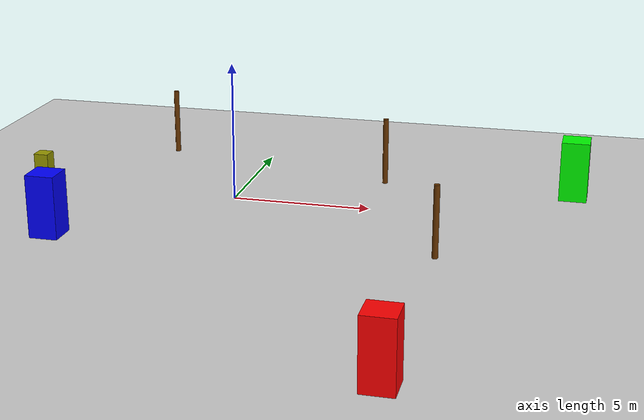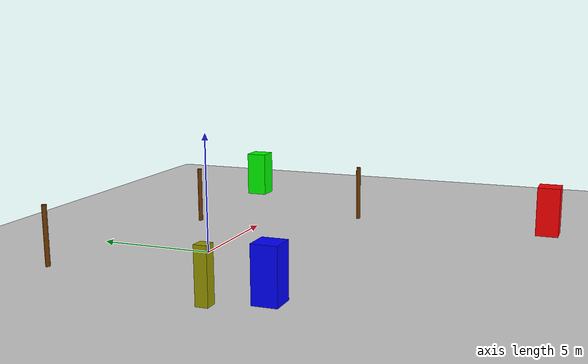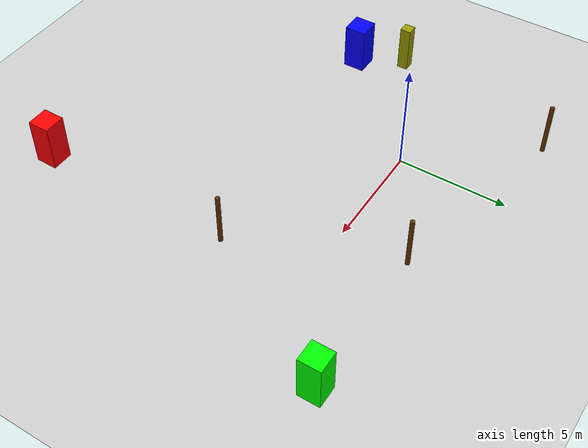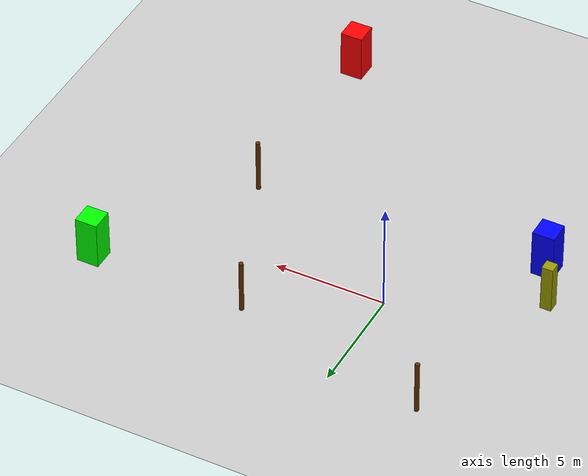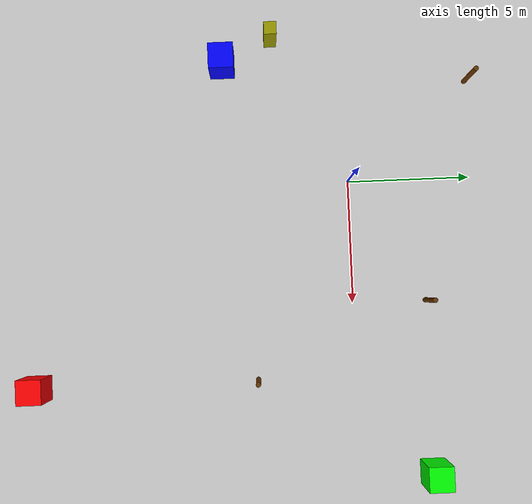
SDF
<?xml version="1.0"?>
<sdf version="1.6">
  <world name="agricultural_field">

    <spherical_coordinates>
      <surface_model>EARTH_WGS84</surface_model>
      <world_frame_orientation>ENU</world_frame_orientation>
      <latitude_deg>45.040000</latitude_deg>
      <longitude_deg>38.980000</longitude_deg>
      <elevation>30.0</elevation>
      <heading_deg>0.0</heading_deg>
    </spherical_coordinates>

    <!-- ====== Физика (ODE) ====== -->
    <physics type="ode">
      <!-- 1000 шагов/с = достаточная точность для с/х задач -->
      <real_time_update_rate>1000.0</real_time_update_rate>
      <max_step_size>0.001</max_step_size>
      <real_time_factor>1.0</real_time_factor>
      <ode>
        <solver>
          <type>quick</type>
          <iters>50</iters>
          <sor>1.3</sor>
        </solver>
        <constraints>
          <cfm>0.0</cfm>
          <erp>0.2</erp>
          <contact_max_correcting_vel>100.0</contact_max_correcting_vel>
          <contact_surface_layer>0.001</contact_surface_layer>
        </constraints>
      </ode>
    </physics>

    <!-- ====== Освещение: солнце ====== -->
    <include>
      <uri>model://sun</uri>
    </include>

    <!-- ====== Земля: плоская поверхность ====== -->
    <include>
      <uri>model://ground_plane</uri>
    </include>

    <!-- ====== Препятствие 1: столб (дерево/межевой знак) ====== -->
    <model name="obstacle_1">
      <static>true</static>
      <pose>5.0 3.0 1.25 0 0 0</pose>
      <link name="link">
        <collision name="collision">
          <geometry>
            <cylinder><radius>0.1</radius><length>2.5</length></cylinder>
          </geometry>
        </collision>
        <visual name="visual">
          <geometry>
            <cylinder><radius>0.1</radius><length>2.5</length></cylinder>
          </geometry>
          <material>
            <ambient>0.4 0.2 0.0 1</ambient>
            <diffuse>0.4 0.2 0.0 1</diffuse>
          </material>
        </visual>
      </link>
    </model>

    <!-- ====== Препятствие 2 ====== -->
    <model name="obstacle_2">
      <static>true</static>
      <pose>-4.0 5.0 1.25 0 0 0</pose>
      <link name="link">
        <collision name="collision">
          <geometry>
            <cylinder><radius>0.1</radius><length>2.5</length></cylinder>
          </geometry>
        </collision>
        <visual name="visual">
          <geometry>
            <cylinder><radius>0.1</radius><length>2.5</length></cylinder>
          </geometry>
          <material>
            <ambient>0.4 0.2 0.0 1</ambient>
            <diffuse>0.4 0.2 0.0 1</diffuse>
          </material>
        </visual>
      </link>
    </model>

    <!-- ====== Препятствие 3 ====== -->
    <model name="obstacle_3">
      <static>true</static>
      <pose>8.0 -4.0 1.25 0 0 0</pose>
      <link name="link">
        <collision name="collision">
          <geometry>
            <cylinder><radius>0.1</radius><length>2.5</length></cylinder>
          </geometry>
        </collision>
        <visual name="visual">
          <geometry>
            <cylinder><radius>0.1</radius><length>2.5</length></cylinder>
          </geometry>
          <material>
            <ambient>0.4 0.2 0.0 1</ambient>
            <diffuse>0.4 0.2 0.0 1</diffuse>
          </material>
        </visual>
      </link>
    </model>

    <!-- ====== Препятствие 4: столб оборудования (0.5x0.5, высота 2.2м) ======
         Высота > плоскости скана лидара (1.8м), иначе 2D-лидар не увидит. -->
    <model name="obstacle_4">
      <static>true</static>
      <pose>-6.0 -3.0 1.1 0 0 0</pose>
      <link name="link">
        <collision name="collision">
          <geometry>
            <box><size>0.5 0.5 2.2</size></box>
          </geometry>
        </collision>
        <visual name="visual">
          <geometry>
            <box><size>0.5 0.5 2.2</size></box>
          </geometry>
          <material>
            <ambient>0.6 0.6 0.0 1</ambient>
            <diffuse>0.6 0.6 0.0 1</diffuse>
          </material>
        </visual>
      </link>
    </model>

    <!-- ====== Препятствие 5: красная колонна 1x1, высота 2.2м, на пути трактора ====== -->
    <model name="obstacle_5">
      <static>true</static>
      <pose>8 -13 1.1 0 0 0</pose>
      <link name="link">
        <collision name="collision">
          <geometry>
            <box><size>1 1 2.2</size></box>
          </geometry>
        </collision>
        <visual name="visual">
          <geometry>
            <box><size>1 1 2.2</size></box>
          </geometry>
          <material>
            <ambient>1 0 0 1</ambient>
            <diffuse>1 0 0 1</diffuse>
          </material>
        </visual>
      </link>
    </model>

    <!-- ====== Препятствие 6: синяя колонна 1x1, высота 2.2м ====== -->
    <model name="obstacle_6">
      <static>true</static>
      <pose>-5 -5 1.1 0 0 0</pose>
      <link name="link">
        <collision name="collision">
          <geometry>
            <box><size>1 1 2.2</size></box>
          </geometry>
        </collision>
        <visual name="visual">
          <geometry>
            <box><size>1 1 2.2</size></box>
          </geometry>
          <material>
            <ambient>0 0 1 1</ambient>
            <diffuse>0 0 1 1</diffuse>
          </material>
        </visual>
      </link>
    </model>

    <!-- ====== Препятствие 7: зелёная колонна 1x1, высота 2.2м ====== -->
    <model name="obstacle_7">
      <static>true</static>
      <pose>12 3 1.1 0 0 0</pose>
      <link name="link">
        <collision name="collision">
          <geometry>
            <box><size>1 1 2.2</size></box>
          </geometry>
        </collision>
        <visual name="visual">
          <geometry>
            <box><size>1 1 2.2</size></box>
          </geometry>
          <material>
            <ambient>0 1 0 1</ambient>
            <diffuse>0 1 0 1</diffuse>
          </material>
        </visual>
      </link>
    </model>

    <!-- ====== Настройки сцены (без теней для ускорения) ====== -->
    <scene>
      <ambient>0.6 0.6 0.6 1.0</ambient>
      <background>0.7 0.8 0.9 1.0</background>
      <shadows>false</shadows>
    </scene>

    <!-- ====== GUI отключён (headless режим) ====== -->
    <gui fullscreen="0">
      <camera name="user_camera">
        <pose>-8 0 6 0 0.5 0</pose>
      </camera>
    </gui>

  </world>
</sdf>
